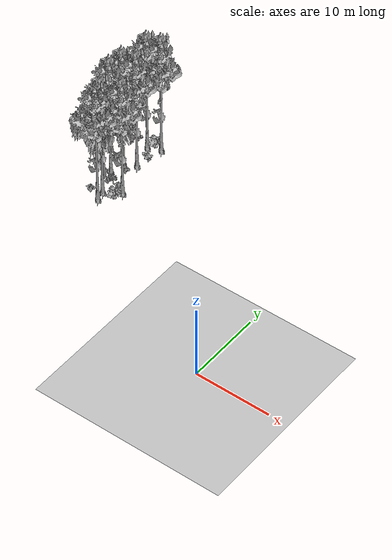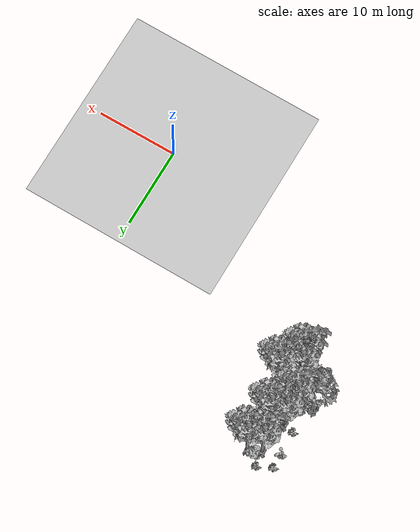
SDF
<sdf version="1.7">
 <world name="default">
  <model name="ground_plane">
   <static>1</static>
   <link name="link">
    <collision name="collision">
     <pose>-50 0 0 0 -0 0</pose>
     <geometry><plane><normal>0 0 1</normal><size>80 80</size></plane></geometry>
     <surface><contact><ode><min_depth>0.01</min_depth><max_vel>0</max_vel></ode></contact></surface>
    </collision>
    <visual name="grass">
     <cast_shadows>0</cast_shadows>
     <geometry>
      <mesh>
       <scale>0.46714285714285714 0.46714285714285714 0.1</scale>
       <uri>file://grass_plane/meshes/grass_plane.dae</uri>
      </mesh>
     </geometry>
    </visual>
   </link>
  </model>
  <model name="Tree 13">
   <static>1</static>
   <pose>-26.297130198007018 22.589806835248623 0 1.57079 -0 0</pose>
   <link name="link">
    <collision name="collision">
     <geometry><mesh><scale>3.5 5 3.5</scale><uri>model://tree_9/meshes/tree_9.obj</uri></mesh></geometry>
    </collision>
    <visual name="visual">
     <geometry><mesh><scale>3.5 5 3.5</scale><uri>model://tree_9/meshes/tree_9.obj</uri></mesh></geometry>
    </visual>
   </link>
  </model>
  <model name="Tree 22">
   <static>1</static>
   <pose>-25.708312679986356 26.531931123848096 0 1.57079 -0 0</pose>
   <link name="link">
    <collision name="collision">
     <geometry><mesh><scale>3.5 5 3.5</scale><uri>model://tree_9/meshes/tree_9.obj</uri></mesh></geometry>
    </collision>
    <visual name="visual">
     <geometry><mesh><scale>3.5 5 3.5</scale><uri>model://tree_9/meshes/tree_9.obj</uri></mesh></geometry>
    </visual>
   </link>
  </model>
  <model name="Tree 85">
   <static>1</static>
   <pose>-27.87019281217557 21.94287977028101 0 1.57079 -0 0</pose>
   <link name="link">
    <collision name="collision">
     <geometry><mesh><scale>3.5 5 3.5</scale><uri>model://tree_9/meshes/tree_9.obj</uri></mesh></geometry>
    </collision>
    <visual name="visual">
     <geometry><mesh><scale>3.5 5 3.5</scale><uri>model://tree_9/meshes/tree_9.obj</uri></mesh></geometry>
    </visual>
   </link>
  </model>
  <model name="Tree 94">
   <static>1</static>
   <pose>-28.06415108917728 19.846603297548654 0 1.57079 -0 0</pose>
   <link name="link">
    <collision name="collision">
     <geometry><mesh><scale>3.5 5 3.5</scale><uri>model://tree_9/meshes/tree_9.obj</uri></mesh></geometry>
    </collision>
    <visual name="visual">
     <geometry><mesh><scale>3.5 5 3.5</scale><uri>model://tree_9/meshes/tree_9.obj</uri></mesh></geometry>
    </visual>
   </link>
  </model>
  <model name="Tree 112">
   <static>1</static>
   <pose>-26.360763297893293 15.259471942675447 0 1.57079 -0 0</pose>
   <link name="link">
    <collision name="collision">
     <geometry><mesh><scale>3.5 5 3.5</scale><uri>model://tree_9/meshes/tree_9.obj</uri></mesh></geometry>
    </collision>
    <visual name="visual">
     <geometry><mesh><scale>3.5 5 3.5</scale><uri>model://tree_9/meshes/tree_9.obj</uri></mesh></geometry>
    </visual>
   </link>
  </model>
  <model name="Tree 275">
   <static>1</static>
   <pose>-26.677461219993326 16.55323306510364 0 1.57079 -0 0</pose>
   <link name="link">
    <collision name="collision">
     <geometry><mesh><scale>3.5 5 3.5</scale><uri>model://tree_9/meshes/tree_9.obj</uri></mesh></geometry>
    </collision>
    <visual name="visual">
     <geometry><mesh><scale>3.5 5 3.5</scale><uri>model://tree_9/meshes/tree_9.obj</uri></mesh></geometry>
    </visual>
   </link>
  </model>
  <model name="Tree 325">
   <static>1</static>
   <pose>-28.08983274071253 18.442703957353203 0 1.57079 -0 0</pose>
   <link name="link">
    <collision name="collision">
     <geometry><mesh><scale>3.5 5 3.5</scale><uri>model://tree_2/meshes/tree_2.obj</uri></mesh></geometry>
    </collision>
    <visual name="visual">
     <geometry><mesh><scale>3.5 5 3.5</scale><uri>model://tree_2/meshes/tree_2.obj</uri></mesh></geometry>
    </visual>
   </link>
  </model>
  <model name="Tree 430">
   <static>1</static>
   <pose>-27.321761012612267 25.861371451520185 0 1.57079 -0 0</pose>
   <link name="link">
    <collision name="collision">
     <geometry><mesh><scale>3.5 5 3.5</scale><uri>model://tree_9/meshes/tree_9.obj</uri></mesh></geometry>
    </collision>
    <visual name="visual">
     <geometry><mesh><scale>3.5 5 3.5</scale><uri>model://tree_9/meshes/tree_9.obj</uri></mesh></geometry>
    </visual>
   </link>
  </model>
  <model name="Tree 572">
   <static>1</static>
   <pose>-24.695737620246447 17.858301661191895 0 1.57079 -0 0</pose>
   <link name="link">
    <collision name="collision">
     <geometry><mesh><scale>3.5 5 3.5</scale><uri>model://tree_9/meshes/tree_9.obj</uri></mesh></geometry>
    </collision>
    <visual name="visual">
     <geometry><mesh><scale>3.5 5 3.5</scale><uri>model://tree_9/meshes/tree_9.obj</uri></mesh></geometry>
    </visual>
   </link>
  </model>
  <model name="Bush 44">
   <static>1</static>
   <pose>-27.506355387218196 27.40060378617312 0 1.57079 -0 0</pose>
   <link name="link">
    <collision name="collision">
     <geometry><mesh><scale>2 2 2</scale><uri>model://bush_2/meshes/bush_2.obj</uri></mesh></geometry>
     <surface><contact><collide_without_contact>false</collide_without_contact></contact></surface>
    </collision>
    <visual name="visual">
     <geometry><mesh><scale>2 2 2</scale><uri>model://bush_2/meshes/bush_2.obj</uri></mesh></geometry>
    </visual>
   </link>
  </model>
  <model name="Bush 72">
   <static>1</static>
   <pose>-27.48439085677441 18.47123180924381 0 1.57079 -0 0</pose>
   <link name="link">
    <collision name="collision">
     <geometry><mesh><scale>2 2 2</scale><uri>model://bush_2/meshes/bush_2.obj</uri></mesh></geometry>
     <surface><contact><collide_without_contact>false</collide_without_contact></contact></surface>
    </collision>
    <visual name="visual">
     <geometry><mesh><scale>2 2 2</scale><uri>model://bush_2/meshes/bush_2.obj</uri></mesh></geometry>
    </visual>
   </link>
  </model>
  <model name="Bush 134">
   <static>1</static>
   <pose>-26.905784916805054 21.083184174529208 0 1.57079 -0 0</pose>
   <link name="link">
    <collision name="collision">
     <geometry><mesh><scale>2 2 2</scale><uri>model://bush_2/meshes/bush_2.obj</uri></mesh></geometry>
     <surface><contact><collide_without_contact>false</collide_without_contact></contact></surface>
    </collision>
    <visual name="visual">
     <geometry><mesh><scale>2 2 2</scale><uri>model://bush_2/meshes/bush_2.obj</uri></mesh></geometry>
    </visual>
   </link>
  </model>
  <model name="Bush 152">
   <static>1</static>
   <pose>-29.18182889820321 25.01086957585909 0 1.57079 -0 0</pose>
   <link name="link">
    <collision name="collision">
     <geometry><mesh><scale>2 2 2</scale><uri>model://bush_0/meshes/bush_0.obj</uri></mesh></geometry>
     <surface><contact><collide_without_contact>false</collide_without_contact></contact></surface>
    </collision>
    <visual name="visual">
     <geometry><mesh><scale>2 2 2</scale><uri>model://bush_0/meshes/bush_0.obj</uri></mesh></geometry>
    </visual>
   </link>
  </model>
  <model name="Bush 207">
   <static>1</static>
   <pose>-25.825195743296256 18.36781297865987 0 1.57079 -0 0</pose>
   <link name="link">
    <collision name="collision">
     <geometry><mesh><scale>2 2 2</scale><uri>model://bush_2/meshes/bush_2.obj</uri></mesh></geometry>
     <surface><contact><collide_without_contact>false</collide_without_contact></contact></surface>
    </collision>
    <visual name="visual">
     <geometry><mesh><scale>2 2 2</scale><uri>model://bush_2/meshes/bush_2.obj</uri></mesh></geometry>
    </visual>
   </link>
  </model>
  <model name="Bush 245">
   <static>1</static>
   <pose>-29.101792809736256 21.849674695662685 0 1.57079 -0 0</pose>
   <link name="link">
    <collision name="collision">
     <geometry><mesh><scale>2 2 2</scale><uri>model://bush_2/meshes/bush_2.obj</uri></mesh></geometry>
     <surface><contact><collide_without_contact>false</collide_without_contact></contact></surface>
    </collision>
    <visual name="visual">
     <geometry><mesh><scale>2 2 2</scale><uri>model://bush_2/meshes/bush_2.obj</uri></mesh></geometry>
    </visual>
   </link>
  </model>
  <model name="Bush 284">
   <static>1</static>
   <pose>-28.214917305815092 16.11878798837406 0 1.57079 -0 0</pose>
   <link name="link">
    <collision name="collision">
     <geometry><mesh><scale>2 2 2</scale><uri>model://bush_2/meshes/bush_2.obj</uri></mesh></geometry>
     <surface><contact><collide_without_contact>false</collide_without_contact></contact></surface>
    </collision>
    <visual name="visual">
     <geometry><mesh><scale>2 2 2</scale><uri>model://bush_2/meshes/bush_2.obj</uri></mesh></geometry>
    </visual>
   </link>
  </model>
  <model name="Bush 340">
   <static>1</static>
   <pose>-28.588100131266682 19.33903472164674 0 1.57079 -0 0</pose>
   <link name="link">
    <collision name="collision">
     <geometry><mesh><scale>2 2 2</scale><uri>model://bush_2/meshes/bush_2.obj</uri></mesh></geometry>
     <surface><contact><collide_without_contact>false</collide_without_contact></contact></surface>
    </collision>
    <visual name="visual">
     <geometry><mesh><scale>2 2 2</scale><uri>model://bush_2/meshes/bush_2.obj</uri></mesh></geometry>
    </visual>
   </link>
  </model>
  <model name="Bush 353">
   <static>1</static>
   <pose>-29.2725858050311 26.541317438058442 0 1.57079 -0 0</pose>
   <link name="link">
    <collision name="collision">
     <geometry><mesh><scale>2 2 2</scale><uri>model://bush_2/meshes/bush_2.obj</uri></mesh></geometry>
     <surface><contact><collide_without_contact>false</collide_without_contact></contact></surface>
    </collision>
    <visual name="visual">
     <geometry><mesh><scale>2 2 2</scale><uri>model://bush_2/meshes/bush_2.obj</uri></mesh></geometry>
    </visual>
   </link>
  </model>
  <model name="Bush 378">
   <static>1</static>
   <pose>-25.609145355901397 23.823991872774116 0 1.57079 -0 0</pose>
   <link name="link">
    <collision name="collision">
     <geometry><mesh><scale>2 2 2</scale><uri>model://bush_0/meshes/bush_0.obj</uri></mesh></geometry>
     <surface><contact><collide_without_contact>false</collide_without_contact></contact></surface>
    </collision>
    <visual name="visual">
     <geometry><mesh><scale>2 2 2</scale><uri>model://bush_0/meshes/bush_0.obj</uri></mesh></geometry>
    </visual>
   </link>
  </model>
  <model name="Bush 442">
   <static>1</static>
   <pose>-24.86698355771123 16.247000265134602 0 1.57079 -0 0</pose>
   <link name="link">
    <collision name="collision">
     <geometry><mesh><scale>2 2 2</scale><uri>model://bush_1/meshes/bush_1.obj</uri></mesh></geometry>
     <surface><contact><collide_without_contact>false</collide_without_contact></contact></surface>
    </collision>
    <visual name="visual">
     <geometry><mesh><scale>2 2 2</scale><uri>model://bush_1/meshes/bush_1.obj</uri></mesh></geometry>
    </visual>
   </link>
  </model>
  <model name="Bush 559">
   <static>1</static>
   <pose>-26.505537848987057 26.203848722148862 0 1.57079 -0 0</pose>
   <link name="link">
    <collision name="collision">
     <geometry><mesh><scale>2 2 2</scale><uri>model://bush_1/meshes/bush_1.obj</uri></mesh></geometry>
     <surface><contact><collide_without_contact>false</collide_without_contact></contact></surface>
    </collision>
    <visual name="visual">
     <geometry><mesh><scale>2 2 2</scale><uri>model://bush_1/meshes/bush_1.obj</uri></mesh></geometry>
    </visual>
   </link>
  </model>
  <model name="Bush 622">
   <static>1</static>
   <pose>-26.524650070685354 18.36810219654314 0 1.57079 -0 0</pose>
   <link name="link">
    <collision name="collision">
     <geometry><mesh><scale>2 2 2</scale><uri>model://bush_5/meshes/bush_5.obj</uri></mesh></geometry>
     <surface><contact><collide_without_contact>false</collide_without_contact></contact></surface>
    </collision>
    <visual name="visual">
     <geometry><mesh><scale>2 2 2</scale><uri>model://bush_5/meshes/bush_5.obj</uri></mesh></geometry>
    </visual>
   </link>
  </model>
 </world>
</sdf>
